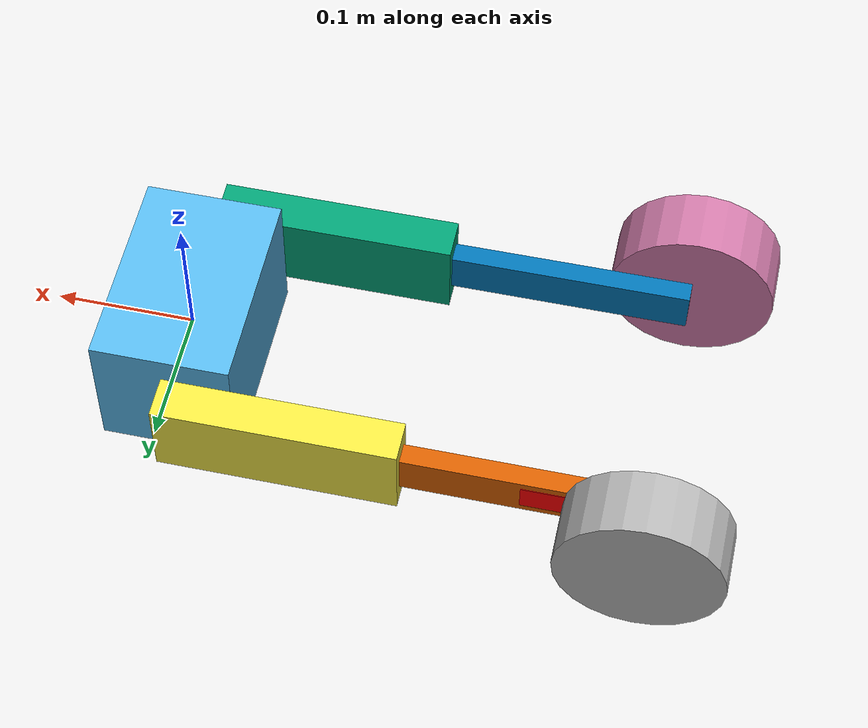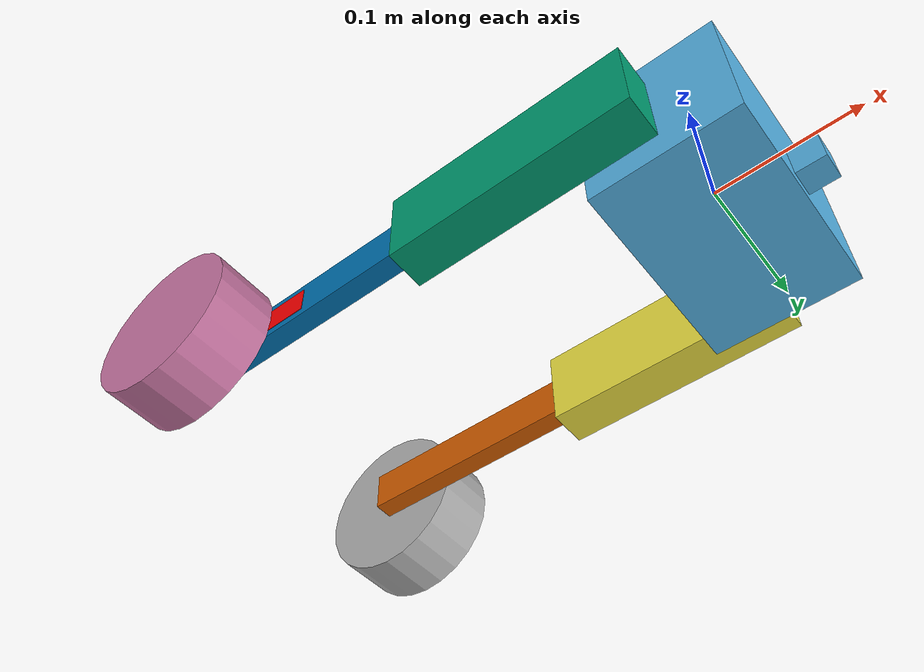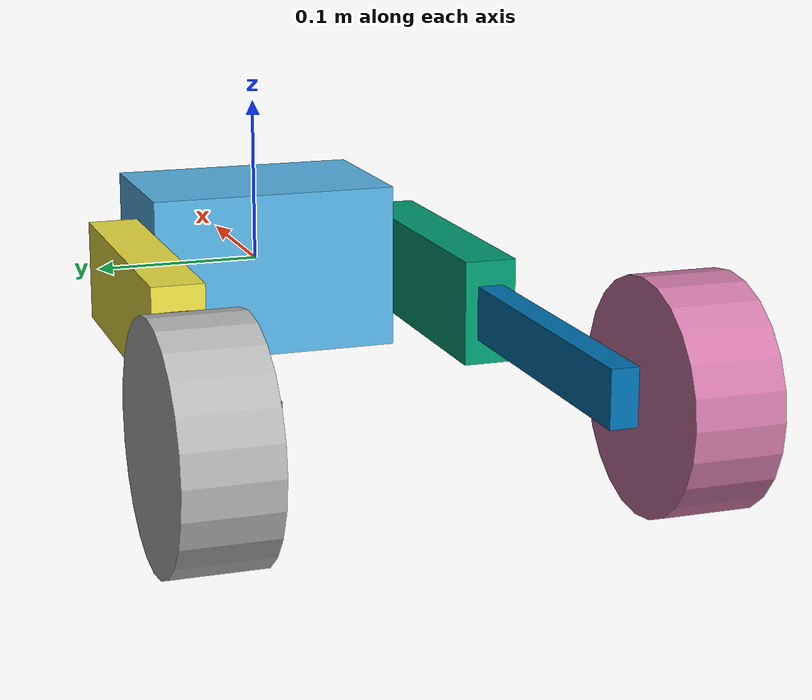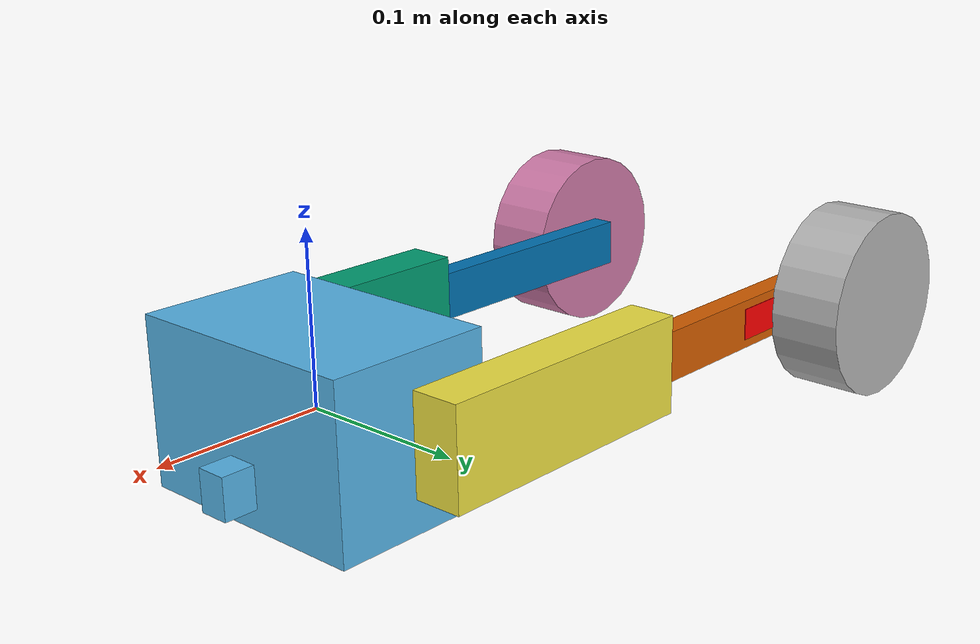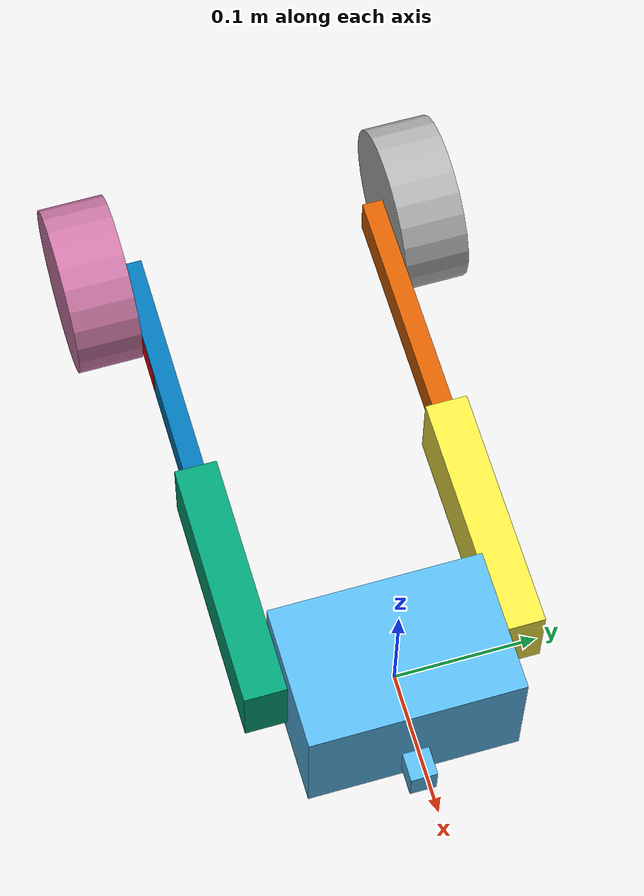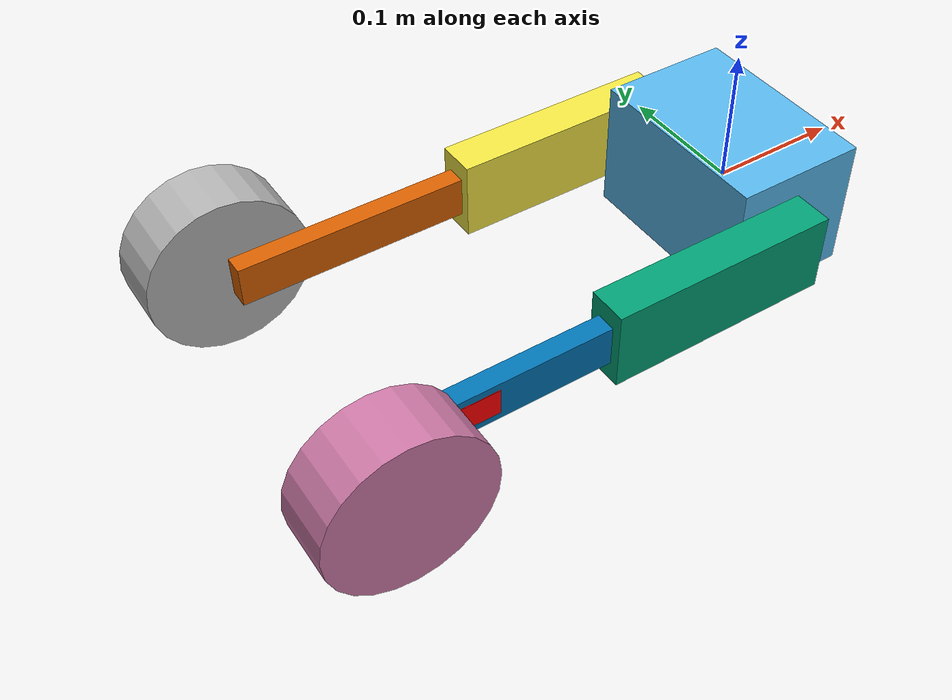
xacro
<?xml version='1.0'?>
<robot name="wheeled_biped" xmlns:xacro="http://www.ros.org/wiki/xacro">

    <!-- XACRO DEFINITIONS -->

    <material name="blue">
       <color rgba="0 0 0.8 1"/>
    </material>

    <!-- Define main chassis parameters -->
    <xacro:property name="mass" value="1.7" />
    <xacro:property name="width" value="0.1" />
    <xacro:property name="length" value="0.15" />
    <xacro:property name="height" value="0.1" />

    <!-- Inertia formulas for box -->
    <xacro:macro name="box_inertia" params="m x y z">
        <mass value="${m}"/>
        <inertia ixx="${(1/12) * m * (y*y + z*z)}" ixy="0.0" ixz="0.0"
                iyy="${(1/12) * m * (x*x + z*z)}" iyz="0.0"
                izz="${(1/12) * m * (x*x + y*y)}"/>
    </xacro:macro>

    <!-- Inertia formulas for cylinder -->
    <xacro:macro name="cylinder_inertia" params="m r l">
        <mass value="${m}"/>
        <inertia
            ixx="${1.0/12 * m * (3*r*r + l*l)}"
            ixy="0.0" ixz="0.0"
            iyy="${1.0/12 * m * (3*r*r + l*l)}"
            iyz="0.0"
            izz="${ 1.0/2  * m * (r*r)}"/>
    </xacro:macro>

    <!-- Hip links definition: right side flip = 1, left side flip =-1 -->
    <xacro:macro name = "hip" params = "side flip">
        <link name="${side}_hip">

            <!-- Inertial parameters -->
            <inertial>
                <origin xyz="0 ${flip * 0.015} -0.0875" rpy="0 0 0"/>
                <xacro:box_inertia m="0.15" x="0.06" y="0.03" z="0.175"/>
            </inertial>

            <!-- Collision geometry -->
            <collision name="${side}_hip_collision">
                <origin xyz="0 ${flip * 0.015} -0.0875" rpy="0 0 0"/>
                <geometry>
                    <box size="0.06 0.03 0.175"/>
                </geometry>
            </collision>

            <!-- Visual geometry -->
            <visual name="${side}_hip_visual">
                <origin xyz="0 ${flip * 0.015} -0.0875" rpy="0 0 0"/>
                <geometry>
                    <box size="0.06 0.03 0.175"/>
                </geometry>
            </visual>
        </link>
    </xacro:macro>

    <!-- Hip joint definition: right side flip = 1, left side flip =-1 -->
    <xacro:macro name = "hip_joint" params = "side flip">
        <joint name="${side}_hip_joint" type="revolute">
            <parent link="chassis"/>
            <child  link="${side}_hip"/>
            <origin xyz="0 ${flip * length/2} 0" rpy="0 0 0"/>
            <axis xyz="0 1 0"/>
            <limit lower="-3.14159" upper="3.14159" effort="3.8" velocity="60.0"/>

        </joint>

    </xacro:macro>

    <!-- Knee links defintion-->
    <xacro:macro name = "knee" params = "side">
        <link name="${side}_knee">

            <!-- Inertial parameters -->
            <inertial>
                <origin xyz="0 0 -0.0875" rpy="0 0 0"/>
                <xacro:box_inertia m="0.05" x="0.031" y="0.015" z="0.175"/>
            </inertial>

            <!-- Collision geometry -->
            <collision name="${side}_knee_collision">
                <origin xyz="0 0 -0.0875" rpy="0 0 0"/>
                <geometry>
                    <box size="0.031 0.015 0.175"/>
                </geometry>
            </collision>

            <!-- Visual geometry -->
            <visual name="${side}_knee_visual">
                <origin xyz="0 0 -0.0875" rpy="0 0 0"/>
                <geometry>
                    <box size="0.031 0.015 0.175"/>
                </geometry>
            </visual>
        </link>
    </xacro:macro>

    <!-- Knee joint definition: right side flip = 1, left side flip =-1 -->
    <xacro:macro name = "knee_joint" params = "side flip">
        <joint name="${side}_knee_joint" type="revolute">
            <parent link="${side}_hip"/>
            <child  link="${side}_knee"/>
            <origin xyz="0 ${flip * 0.015} -0.175" rpy="0 0 0"/>
            <axis xyz="0 1 0"/>
            <limit lower="-3.14159" upper="3.14159" effort="3.8" velocity="60.0"/>

        </joint>
    </xacro:macro>

    <!-- Wheel links defintion-->
    <xacro:macro name = "wheel" params = "side flip">
        <link name="${side}_wheel">

            <!-- Inertial parameters -->
            <inertial>
                <origin xyz="0 ${flip * 0.0469/2} 0" rpy="1.5708 0 0"/>
                <xacro:cylinder_inertia m="0.7" r="0.06" l="0.0469"/>
            </inertial>

            <!-- Collision geometry -->
            <collision name="${side}_wheel_collision">
                <origin xyz="0 ${flip * 0.0469/2} 0" rpy="1.5708 0 0"/>
                <geometry>
                    <cylinder radius="0.06" length="0.0469"/>
                </geometry>
            </collision>

            <!-- Visual geometry -->
            <visual name="${side}_wheel_visual">
                <origin xyz="0 ${flip * 0.0469/2} 0" rpy="1.5708 0 0"/>
                <geometry>
                    <cylinder radius="0.06" length="0.0469"/>
                </geometry>
            </visual>
            <visual name="${side}_wheel_marker">
                <origin xyz="0 0 0.06" rpy="0 0 0"/>
                <geometry><box size="0.02 0.001 0.06"/></geometry>
                <material name="red">
                    <color rgba="1 0 0 1"/>
                </material>
            </visual>
        </link>
    </xacro:macro>

    <!-- Wheel joint definition: right side flip = 1, left side flip =-1 -->
    <xacro:macro name = "wheel_joint" params = "side flip">
        <joint name="${side}_wheel_joint" type="continuous">
            <parent link="${side}_knee"/>
            <child  link="${side}_wheel"/>
            <origin xyz="0 ${flip * 0.015/2} -0.175" rpy="0 0 0"/>
            <axis xyz="0 1 0"/>
            <limit effort="3.8" velocity="60.0"/>
            <dynamics damping="0.005" friction="0"/>
        </joint>
    </xacro:macro>

    <!-- LINKS DEFINITIONS -->

    <!-- Dummy base link -->
    <link name="base_link"/>
    <joint name="base_to_chassis_joint" type="fixed">
        <parent link="base_link"/>
        <child link="chassis"/>
        <origin xyz="0 0 0" rpy="0 1.5708 0"/>
    </joint>

    <!-- Chassis link -->
    <link name='chassis'>
        <inertial>
            <xacro:box_inertia m="${mass}" x="${width}" y="${length}" z="${height}" />
        </inertial>

        <collision name='collision'>
            <geometry>
                <box size="${width} ${length} ${height}"/>
            </geometry>
        </collision>

        <visual name='visual'>
            <geometry>
                <box size="${width} ${length} ${height}"/>
            </geometry>
        </visual>

         <!-- Orientation indicator box -->
        <visual name='orientation_indicator'>
            <origin xyz="${width/4} 0 ${height/2 + 0.01}" rpy="0 0 0"/>
            <geometry>
                <box size="${width/4} ${length/8} 0.02"/>
            </geometry>
        </visual>
    </link>

    <!-- Hip links & Joints-->
    <xacro:hip side = "left" flip = "-1"/>
    <xacro:hip side = "right" flip = "1"/>

    <xacro:hip_joint side = "left" flip = "-1"/>
    <xacro:hip_joint side = "right" flip = "1"/>

    <!-- Knee links & Joints -->
    <xacro:knee side = "left"/>
    <xacro:knee side = "right"/>

    <xacro:knee_joint side = "left" flip = "-1"/>
    <xacro:knee_joint side = "right" flip = "1"/>

    <xacro:wheel side = "left" flip = "-1"/>
    <xacro:wheel side = "right" flip = "1"/>

    <xacro:wheel_joint side = "left" flip = "-1"/>
    <xacro:wheel_joint side = "right" flip = "1"/>

    <!-- IMU link -->
    <link name="imu_link">
        <inertial>
            <mass value="0.01"/>
            <origin xyz="0 0 0" rpy="0 0 0"/>
            <!-- approximate a small cube -->
            <inertia
            ixx="1e-6" ixy="0.0" ixz="0.0"
            iyy="1e-6" iyz="0.0"
            izz="1e-6"/>
        </inertial>
        <visual>
            <origin xyz="0 0 0" rpy="0 0 0"/>
            <geometry>
                <box size="0.02 0.02 0.02"/>
            </geometry>
            <material name="blue"/>
        </visual>
    </link>

    <!--Joint IMU to the chassis -->
    <joint name="imu_joint" type="fixed">
        <parent link="chassis"/>
        <child  link="imu_link"/>
        <!-- adjust offset to position the IMU where you like: -->
        <origin xyz="0 0 0.02" rpy="0 0 0"/>
    </joint>

    <!-- IMU sensor  -->
    <gazebo reference="imu_link">
        <sensor name="imu_sensor" type="imu">
            <always_on>true</always_on>
            <update_rate>100</update_rate>
            <visualize>true</visualize>
            <plugin filename="libgazebo_ros_imu_sensor.so" name="imu_plugin">
                <topicName>/wheeled_biped/imu/data</topicName>
                <frameName>imu_link</frameName>
                <gaussianNoise>0.001</gaussianNoise> <!-- A little noise is more realistic -->
                <initialOrientationAsReference>false</initialOrientationAsReference>
            </plugin>
            <pose>0 0 0 0 0 0</pose>
        </sensor>
    </gazebo>

    <!-- Gazebo ros_control plugins for the robot -->
    <gazebo>
        <plugin name="gazebo_ros_control" filename="libgazebo_ros_control.so">
            <robotNamespace>/wheeled_biped</robotNamespace>
        </plugin>
    </gazebo>

    <!-- Transmission: turn joints in actuators -->
    <xacro:macro name="transmission" params="joint">
        <transmission name="${joint}_transmission">
            <type>transmission_interface/SimpleTransmission</type>
            <!-- Desired low level control: torque wanted -->
            <joint name="${joint}">
                <hardwareInterface>hardware_interface/EffortJointInterface</hardwareInterface>
            </joint>

            <actuator name="${joint}_motor">
                <hardwareInterface>hardware_interface/EffortJointInterface</hardwareInterface>
                <mechanicalReduction>1</mechanicalReduction>
            </actuator>
        </transmission>
    </xacro:macro>

    <xacro:transmission joint="left_hip_joint"/>
    <xacro:transmission joint="right_hip_joint"/>
    <xacro:transmission joint="left_knee_joint"/>
    <xacro:transmission joint="right_knee_joint"/>
    <xacro:transmission joint="left_wheel_joint"/>
    <xacro:transmission joint="right_wheel_joint"/>

    <!-- Gazebo friction parameters for the wheels -->
   <xacro:macro name="friction" params="link">
  <gazebo reference="${link}">
    <max_contacts>20</max_contacts>      <!-- keep many points -->
    <surface>
      <friction>
        <ode>
          <mu>1.0</mu>   <mu2>1.0</mu2>
          <slip1>0.02</slip1> <slip2>0.02</slip2>   <!-- tiny “give” -->
        </ode>
      </friction>
    </surface>
  </gazebo>
</xacro:macro>

</robot>
